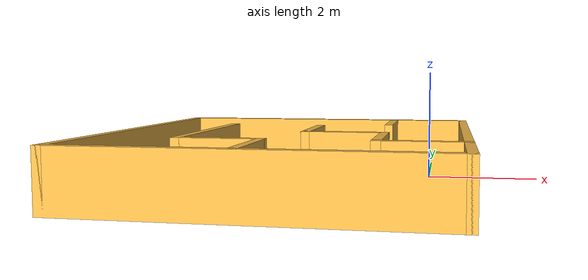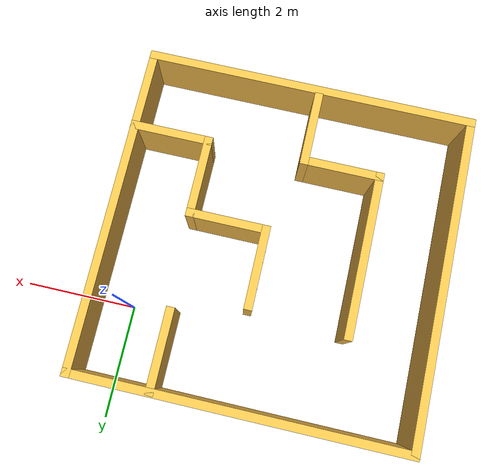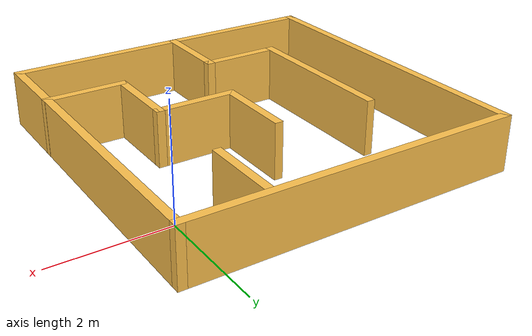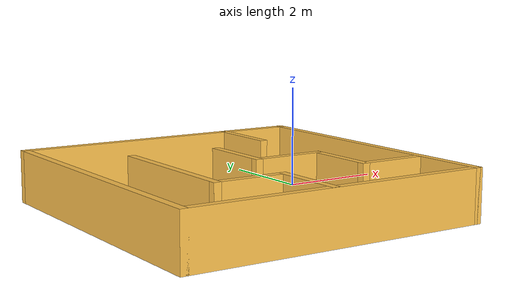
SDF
<?xml version='1.0'?>
<sdf version='1.5'>
  <model name='Maze_ql_1'>
    <pose frame=''>-2.2775 -1.578 0 0 -0 0</pose>
    <link name='Wall_10'>
      <collision name='Wall_10_Collision'>
        <geometry>
          <box>
            <size>6 0.15 1</size>
          </box>
        </geometry>
        <pose frame=''>0 0 0.5 0 -0 0</pose>
      </collision>
      <visual name='Wall_10_Visual'>
        <pose frame=''>0 0 0.5 0 -0 0</pose>
        <geometry>
          <box>
            <size>6 0.15 1</size>
          </box>
        </geometry>
        <material>
          <script>
            <uri>file://media/materials/scripts/gazebo.material</uri>
            <name>Gazebo/Grey</name>
          </script>
          <ambient>1 0.764706 0.305882 1</ambient>
        </material>
      </visual>
      <pose frame=''>-0.0015 2.925 0 0 -0 3.14159</pose>
    </link>
    <link name='Wall_11'>
      <collision name='Wall_11_Collision'>
        <geometry>
          <box>
            <size>6 0.15 1</size>
          </box>
        </geometry>
        <pose frame=''>0 0 0.5 0 -0 0</pose>
      </collision>
      <visual name='Wall_11_Visual'>
        <pose frame=''>0 0 0.5 0 -0 0</pose>
        <geometry>
          <box>
            <size>6 0.15 1</size>
          </box>
        </geometry>
        <material>
          <script>
            <uri>file://media/materials/scripts/gazebo.material</uri>
            <name>Gazebo/Grey</name>
          </script>
          <ambient>1 0.764706 0.305882 1</ambient>
        </material>
      </visual>
      <pose frame=''>-2.9265 0 0 0 0 -1.5708</pose>
    </link>
    <link name='Wall_13'>
      <collision name='Wall_13_Collision'>
        <geometry>
          <box>
            <size>1.5 0.15 1</size>
          </box>
        </geometry>
        <pose frame=''>0 0 0.5 0 -0 0</pose>
      </collision>
      <visual name='Wall_13_Visual'>
        <pose frame=''>0 0 0.5 0 -0 0</pose>
        <geometry>
          <box>
            <size>1.5 0.15 1</size>
          </box>
        </geometry>
        <material>
          <script>
            <uri>file://media/materials/scripts/gazebo.material</uri>
            <name>Gazebo/Grey</name>
          </script>
          <ambient>1 0.764706 0.305882 1</ambient>
        </material>
      </visual>
      <pose frame=''>-0.1665 -2.238 0 0 -0 1.5708</pose>
    </link>
    <link name='Wall_14'>
      <collision name='Wall_14_Collision'>
        <geometry>
          <box>
            <size>1.5 0.15 1</size>
          </box>
        </geometry>
        <pose frame=''>0 0 0.5 0 -0 0</pose>
      </collision>
      <visual name='Wall_14_Visual'>
        <pose frame=''>0 0 0.5 0 -0 0</pose>
        <geometry>
          <box>
            <size>1.5 0.15 1</size>
          </box>
        </geometry>
        <material>
          <script>
            <uri>file://media/materials/scripts/gazebo.material</uri>
            <name>Gazebo/Grey</name>
          </script>
          <ambient>1 0.764706 0.305882 1</ambient>
        </material>
      </visual>
      <pose frame=''>-0.8415 -1.563 0 0 -0 3.14159</pose>
    </link>
    <link name='Wall_15'>
      <collision name='Wall_15_Collision'>
        <geometry>
          <box>
            <size>3 0.15 1</size>
          </box>
        </geometry>
        <pose frame=''>0 0 0.5 0 -0 0</pose>
      </collision>
      <visual name='Wall_15_Visual'>
        <pose frame=''>0 0 0.5 0 -0 0</pose>
        <geometry>
          <box>
            <size>3 0.15 1</size>
          </box>
        </geometry>
        <material>
          <script>
            <uri>file://media/materials/scripts/gazebo.material</uri>
            <name>Gazebo/Grey</name>
          </script>
          <ambient>1 0.764706 0.305882 1</ambient>
        </material>
      </visual>
      <pose frame=''>-1.5165 -0.138 0 0 -0 1.5708</pose>
    </link>
    <link name='Wall_17'>
      <collision name='Wall_17_Collision'>
        <geometry>
          <box>
            <size>1.5 0.15 1</size>
          </box>
        </geometry>
        <pose frame=''>0 0 0.5 0 -0 0</pose>
      </collision>
      <visual name='Wall_17_Visual'>
        <pose frame=''>0 0 0.5 0 -0 0</pose>
        <geometry>
          <box>
            <size>1.5 0.15 1</size>
          </box>
        </geometry>
        <material>
          <script>
            <uri>file://media/materials/scripts/gazebo.material</uri>
            <name>Gazebo/Grey</name>
          </script>
          <ambient>1 0.764706 0.305882 1</ambient>
        </material>
      </visual>
      <pose frame=''>2.2515 -1.533 0 0 -0 3.14159</pose>
    </link>
    <link name='Wall_18'>
      <collision name='Wall_18_Collision'>
        <geometry>
          <box>
            <size>1.5 0.15 1</size>
          </box>
        </geometry>
        <pose frame=''>0 0 0.5 0 -0 0</pose>
      </collision>
      <visual name='Wall_18_Visual'>
        <pose frame=''>0 0 0.5 0 -0 0</pose>
        <geometry>
          <box>
            <size>1.5 0.15 1</size>
          </box>
        </geometry>
        <material>
          <script>
            <uri>file://media/materials/scripts/gazebo.material</uri>
            <name>Gazebo/Grey</name>
          </script>
          <ambient>1 0.764706 0.305882 1</ambient>
        </material>
      </visual>
      <pose frame=''>1.5765 -0.858 0 0 -0 1.5708</pose>
    </link>
    <link name='Wall_19'>
      <collision name='Wall_19_Collision'>
        <geometry>
          <box>
            <size>1.5 0.15 1</size>
          </box>
        </geometry>
        <pose frame=''>0 0 0.5 0 -0 0</pose>
      </collision>
      <visual name='Wall_19_Visual'>
        <pose frame=''>0 0 0.5 0 -0 0</pose>
        <geometry>
          <box>
            <size>1.5 0.15 1</size>
          </box>
        </geometry>
        <material>
          <script>
            <uri>file://media/materials/scripts/gazebo.material</uri>
            <name>Gazebo/Grey</name>
          </script>
          <ambient>1 0.764706 0.305882 1</ambient>
        </material>
      </visual>
      <pose frame=''>0.9015 -0.183 0 0 -0 3.14159</pose>
    </link>
    <link name='Wall_20'>
      <collision name='Wall_20_Collision'>
        <geometry>
          <box>
            <size>1.5 0.15 1</size>
          </box>
        </geometry>
        <pose frame=''>0 0 0.5 0 -0 0</pose>
      </collision>
      <visual name='Wall_20_Visual'>
        <pose frame=''>0 0 0.5 0 -0 0</pose>
        <geometry>
          <box>
            <size>1.5 0.15 1</size>
          </box>
        </geometry>
        <material>
          <script>
            <uri>file://media/materials/scripts/gazebo.material</uri>
            <name>Gazebo/Grey</name>
          </script>
          <ambient>1 0.764706 0.305882 1</ambient>
        </material>
      </visual>
      <pose frame=''>0.2265 0.492 0 0 -0 1.5708</pose>
    </link>
    <link name='Wall_24'>
      <collision name='Wall_24_Collision'>
        <geometry>
          <box>
            <size>1.5 0.15 1</size>
          </box>
        </geometry>
        <pose frame=''>0 0 0.5 0 -0 0</pose>
      </collision>
      <visual name='Wall_24_Visual'>
        <pose frame=''>0 0 0.5 0 -0 0</pose>
        <geometry>
          <box>
            <size>1.5 0.15 1</size>
          </box>
        </geometry>
        <material>
          <script>
            <uri>file://media/materials/scripts/gazebo.material</uri>
            <name>Gazebo/Grey</name>
          </script>
          <ambient>1 0.764706 0.305882 1</ambient>
        </material>
      </visual>
      <pose frame=''>1.5005 2.231 0 0 0 -1.5708</pose>
    </link>
    <link name='Wall_6'>
      <collision name='Wall_6_Collision'>
        <geometry>
          <box>
            <size>6 0.15 1</size>
          </box>
        </geometry>
        <pose frame=''>0 0 0.5 0 -0 0</pose>
      </collision>
      <visual name='Wall_6_Visual'>
        <pose frame=''>0 0 0.5 0 -0 0</pose>
        <geometry>
          <box>
            <size>6 0.15 1</size>
          </box>
        </geometry>
        <material>
          <script>
            <uri>file://media/materials/scripts/gazebo.material</uri>
            <name>Gazebo/Grey</name>
          </script>
          <ambient>1 0.764706 0.305882 1</ambient>
        </material>
      </visual>
      <pose frame=''>-0.0015 -2.925 0 0 -0 0</pose>
    </link>
    <link name='Wall_7'>
      <collision name='Wall_7_Collision'>
        <geometry>
          <box>
            <size>6 0.15 1</size>
          </box>
        </geometry>
        <pose frame=''>0 0 0.5 0 -0 0</pose>
      </collision>
      <visual name='Wall_7_Visual'>
        <pose frame=''>0 0 0.5 0 -0 0</pose>
        <geometry>
          <box>
            <size>6 0.15 1</size>
          </box>
        </geometry>
        <material>
          <script>
            <uri>file://media/materials/scripts/gazebo.material</uri>
            <name>Gazebo/Grey</name>
          </script>
          <ambient>1 0.764706 0.305882 1</ambient>
        </material>
      </visual>
      <pose frame=''>2.9235 0 0 0 -0 1.5708</pose>
    </link>
    <static>1</static>
  </model>
</sdf>
